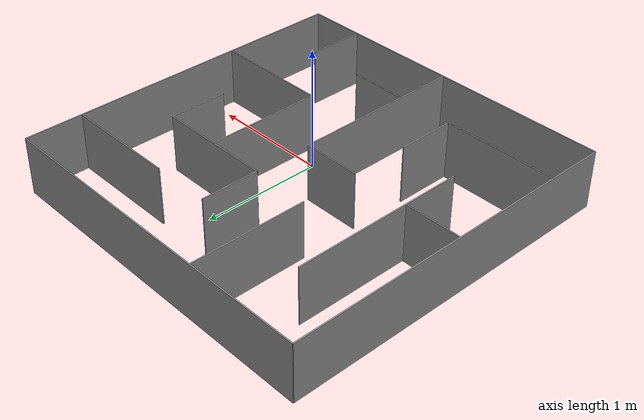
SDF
<?xml version='1.0'?>
<sdf version='1.7'>
  <model name='Maze'>
    <link name='link_0_clone_0_clone_0'>
      <inertial>
        <mass>1</mass>
        <inertia>
          <ixx>0.166667</ixx>
          <ixy>0</ixy>
          <ixz>0</ixz>
          <iyy>0.166667</iyy>
          <iyz>0</iyz>
          <izz>0.166667</izz>
        </inertia>
        <pose>0 0 0 0 -0 0</pose>
      </inertial>
      <pose>-0.039474 -1.42105 0 0 -0 0</pose>
      <gravity>1</gravity>
      <self_collide>0</self_collide>
      <kinematic>0</kinematic>
      <enable_wind>0</enable_wind>
      <visual name='visual'>
        <pose>0 0 0 0 -0 0</pose>
        <geometry>
          <box>
            <size>3 0.01 0.5</size>
          </box>
        </geometry>
        <material>
          <lighting>1</lighting>
          <script>
            <uri>file://media/materials/scripts/gazebo.material</uri>
            <name>Gazebo/Grey</name>
          </script>
          <shader type='pixel'>
            <normal_map>__default__</normal_map>
          </shader>
          <ambient>0.3 0.3 0.3 1</ambient>
          <diffuse>0.7 0.7 0.7 1</diffuse>
          <specular>0.01 0.01 0.01 1</specular>
          <emissive>0 0 0 1</emissive>
        </material>
        <transparency>0</transparency>
        <cast_shadows>1</cast_shadows>
      </visual>
      <collision name='collision'>
        <laser_retro>0</laser_retro>
        <max_contacts>10</max_contacts>
        <pose>0 0 0 0 -0 0</pose>
        <geometry>
          <box>
            <size>3 0.01 0.5</size>
          </box>
        </geometry>
        <surface>
          <friction>
            <ode>
              <mu>1</mu>
              <mu2>1</mu2>
              <fdir1>0 0 0</fdir1>
              <slip1>0</slip1>
              <slip2>0</slip2>
            </ode>
            <torsional>
              <coefficient>1</coefficient>
              <patch_radius>0</patch_radius>
              <surface_radius>0</surface_radius>
              <use_patch_radius>1</use_patch_radius>
              <ode>
                <slip>0</slip>
              </ode>
            </torsional>
          </friction>
          <bounce>
            <restitution_coefficient>0</restitution_coefficient>
            <threshold>1e+06</threshold>
          </bounce>
          <contact>
            <collide_without_contact>0</collide_without_contact>
            <collide_without_contact_bitmask>1</collide_without_contact_bitmask>
            <collide_bitmask>1</collide_bitmask>
            <ode>
              <soft_cfm>0</soft_cfm>
              <soft_erp>0.2</soft_erp>
              <kp>1e+13</kp>
              <kd>1</kd>
              <max_vel>0.01</max_vel>
              <min_depth>0</min_depth>
            </ode>
            <bullet>
              <split_impulse>1</split_impulse>
              <split_impulse_penetration_threshold>-0.01</split_impulse_penetration_threshold>
              <soft_cfm>0</soft_cfm>
              <soft_erp>0.2</soft_erp>
              <kp>1e+13</kp>
              <kd>1</kd>
            </bullet>
          </contact>
        </surface>
      </collision>
    </link>
    <link name='link_0_clone_0_clone_0_clone_0'>
      <inertial>
        <mass>1</mass>
        <inertia>
          <ixx>0.166667</ixx>
          <ixy>0</ixy>
          <ixz>0</ixz>
          <iyy>0.166667</iyy>
          <iyz>0</iyz>
          <izz>0.166667</izz>
        </inertia>
        <pose>0 0 0 0 -0 0</pose>
      </inertial>
      <pose>-0.039474 1.57895 0 0 -0 0</pose>
      <gravity>1</gravity>
      <self_collide>0</self_collide>
      <kinematic>0</kinematic>
      <enable_wind>0</enable_wind>
      <visual name='visual'>
        <pose>0 0 0 0 -0 0</pose>
        <geometry>
          <box>
            <size>3 0.01 0.5</size>
          </box>
        </geometry>
        <material>
          <lighting>1</lighting>
          <script>
            <uri>file://media/materials/scripts/gazebo.material</uri>
            <name>Gazebo/Grey</name>
          </script>
          <shader type='pixel'>
            <normal_map>__default__</normal_map>
          </shader>
          <ambient>0.3 0.3 0.3 1</ambient>
          <diffuse>0.7 0.7 0.7 1</diffuse>
          <specular>0.01 0.01 0.01 1</specular>
          <emissive>0 0 0 1</emissive>
        </material>
        <transparency>0</transparency>
        <cast_shadows>1</cast_shadows>
      </visual>
      <collision name='collision'>
        <laser_retro>0</laser_retro>
        <max_contacts>10</max_contacts>
        <pose>0 0 0 0 -0 0</pose>
        <geometry>
          <box>
            <size>3 0.01 0.5</size>
          </box>
        </geometry>
        <surface>
          <friction>
            <ode>
              <mu>1</mu>
              <mu2>1</mu2>
              <fdir1>0 0 0</fdir1>
              <slip1>0</slip1>
              <slip2>0</slip2>
            </ode>
            <torsional>
              <coefficient>1</coefficient>
              <patch_radius>0</patch_radius>
              <surface_radius>0</surface_radius>
              <use_patch_radius>1</use_patch_radius>
              <ode>
                <slip>0</slip>
              </ode>
            </torsional>
          </friction>
          <bounce>
            <restitution_coefficient>0</restitution_coefficient>
            <threshold>1e+06</threshold>
          </bounce>
          <contact>
            <collide_without_contact>0</collide_without_contact>
            <collide_without_contact_bitmask>1</collide_without_contact_bitmask>
            <collide_bitmask>1</collide_bitmask>
            <ode>
              <soft_cfm>0</soft_cfm>
              <soft_erp>0.2</soft_erp>
              <kp>1e+13</kp>
              <kd>1</kd>
              <max_vel>0.01</max_vel>
              <min_depth>0</min_depth>
            </ode>
            <bullet>
              <split_impulse>1</split_impulse>
              <split_impulse_penetration_threshold>-0.01</split_impulse_penetration_threshold>
              <soft_cfm>0</soft_cfm>
              <soft_erp>0.2</soft_erp>
              <kp>1e+13</kp>
              <kd>1</kd>
            </bullet>
          </contact>
        </surface>
      </collision>
    </link>
    <link name='link_0_clone_0_clone_0_clone_1'>
      <inertial>
        <mass>1</mass>
        <inertia>
          <ixx>0.166667</ixx>
          <ixy>0</ixy>
          <ixz>0</ixz>
          <iyy>0.166667</iyy>
          <iyz>0</iyz>
          <izz>0.166667</izz>
        </inertia>
        <pose>0 0 0 0 -0 0</pose>
      </inertial>
      <pose>1.46053 0.078947 0 0 -0 0</pose>
      <gravity>1</gravity>
      <self_collide>0</self_collide>
      <kinematic>0</kinematic>
      <enable_wind>0</enable_wind>
      <visual name='visual'>
        <pose>0 0 0 0 -0 0</pose>
        <geometry>
          <box>
            <size>0.01 3 0.5</size>
          </box>
        </geometry>
        <material>
          <lighting>1</lighting>
          <script>
            <uri>file://media/materials/scripts/gazebo.material</uri>
            <name>Gazebo/Grey</name>
          </script>
          <shader type='pixel'>
            <normal_map>__default__</normal_map>
          </shader>
          <ambient>0.3 0.3 0.3 1</ambient>
          <diffuse>0.7 0.7 0.7 1</diffuse>
          <specular>0.01 0.01 0.01 1</specular>
          <emissive>0 0 0 1</emissive>
        </material>
        <transparency>0</transparency>
        <cast_shadows>1</cast_shadows>
      </visual>
      <collision name='collision'>
        <laser_retro>0</laser_retro>
        <max_contacts>10</max_contacts>
        <pose>0 0 0 0 -0 0</pose>
        <geometry>
          <box>
            <size>0.01 3 0.5</size>
          </box>
        </geometry>
        <surface>
          <friction>
            <ode>
              <mu>1</mu>
              <mu2>1</mu2>
              <fdir1>0 0 0</fdir1>
              <slip1>0</slip1>
              <slip2>0</slip2>
            </ode>
            <torsional>
              <coefficient>1</coefficient>
              <patch_radius>0</patch_radius>
              <surface_radius>0</surface_radius>
              <use_patch_radius>1</use_patch_radius>
              <ode>
                <slip>0</slip>
              </ode>
            </torsional>
          </friction>
          <bounce>
            <restitution_coefficient>0</restitution_coefficient>
            <threshold>1e+06</threshold>
          </bounce>
          <contact>
            <collide_without_contact>0</collide_without_contact>
            <collide_without_contact_bitmask>1</collide_without_contact_bitmask>
            <collide_bitmask>1</collide_bitmask>
            <ode>
              <soft_cfm>0</soft_cfm>
              <soft_erp>0.2</soft_erp>
              <kp>1e+13</kp>
              <kd>1</kd>
              <max_vel>0.01</max_vel>
              <min_depth>0</min_depth>
            </ode>
            <bullet>
              <split_impulse>1</split_impulse>
              <split_impulse_penetration_threshold>-0.01</split_impulse_penetration_threshold>
              <soft_cfm>0</soft_cfm>
              <soft_erp>0.2</soft_erp>
              <kp>1e+13</kp>
              <kd>1</kd>
            </bullet>
          </contact>
        </surface>
      </collision>
    </link>
    <link name='link_0_clone_0_clone_0_clone_1_clone'>
      <inertial>
        <mass>1</mass>
        <inertia>
          <ixx>0.166667</ixx>
          <ixy>0</ixy>
          <ixz>0</ixz>
          <iyy>0.166667</iyy>
          <iyz>0</iyz>
          <izz>0.166667</izz>
        </inertia>
        <pose>0 0 0 0 -0 0</pose>
      </inertial>
      <pose>-1.53947 0.078947 0 0 -0 0</pose>
      <gravity>1</gravity>
      <self_collide>0</self_collide>
      <kinematic>0</kinematic>
      <enable_wind>0</enable_wind>
      <visual name='visual'>
        <pose>0 0 0 0 -0 0</pose>
        <geometry>
          <box>
            <size>0.01 3 0.5</size>
          </box>
        </geometry>
        <material>
          <lighting>1</lighting>
          <script>
            <uri>file://media/materials/scripts/gazebo.material</uri>
            <name>Gazebo/Grey</name>
          </script>
          <shader type='pixel'>
            <normal_map>__default__</normal_map>
          </shader>
          <ambient>0.3 0.3 0.3 1</ambient>
          <diffuse>0.7 0.7 0.7 1</diffuse>
          <specular>0.01 0.01 0.01 1</specular>
          <emissive>0 0 0 1</emissive>
        </material>
        <transparency>0</transparency>
        <cast_shadows>1</cast_shadows>
      </visual>
      <collision name='collision'>
        <laser_retro>0</laser_retro>
        <max_contacts>10</max_contacts>
        <pose>0 0 0 0 -0 0</pose>
        <geometry>
          <box>
            <size>0.01 3 0.5</size>
          </box>
        </geometry>
        <surface>
          <friction>
            <ode>
              <mu>1</mu>
              <mu2>1</mu2>
              <fdir1>0 0 0</fdir1>
              <slip1>0</slip1>
              <slip2>0</slip2>
            </ode>
            <torsional>
              <coefficient>1</coefficient>
              <patch_radius>0</patch_radius>
              <surface_radius>0</surface_radius>
              <use_patch_radius>1</use_patch_radius>
              <ode>
                <slip>0</slip>
              </ode>
            </torsional>
          </friction>
          <bounce>
            <restitution_coefficient>0</restitution_coefficient>
            <threshold>1e+06</threshold>
          </bounce>
          <contact>
            <collide_without_contact>0</collide_without_contact>
            <collide_without_contact_bitmask>1</collide_without_contact_bitmask>
            <collide_bitmask>1</collide_bitmask>
            <ode>
              <soft_cfm>0</soft_cfm>
              <soft_erp>0.2</soft_erp>
              <kp>1e+13</kp>
              <kd>1</kd>
              <max_vel>0.01</max_vel>
              <min_depth>0</min_depth>
            </ode>
            <bullet>
              <split_impulse>1</split_impulse>
              <split_impulse_penetration_threshold>-0.01</split_impulse_penetration_threshold>
              <soft_cfm>0</soft_cfm>
              <soft_erp>0.2</soft_erp>
              <kp>1e+13</kp>
              <kd>1</kd>
            </bullet>
          </contact>
        </surface>
      </collision>
    </link>
    <link name='link_0_clone_0_clone_0_clone_clone_0'>
      <inertial>
        <mass>1</mass>
        <inertia>
          <ixx>0.166667</ixx>
          <ixy>0</ixy>
          <ixz>0</ixz>
          <iyy>0.166667</iyy>
          <iyz>0</iyz>
          <izz>0.166667</izz>
        </inertia>
        <pose>0 0 0 0 -0 0</pose>
      </inertial>
      <pose>0.960526 1.07895 0 0 -0 0</pose>
      <gravity>1</gravity>
      <self_collide>0</self_collide>
      <kinematic>0</kinematic>
      <enable_wind>0</enable_wind>
      <visual name='visual'>
        <pose>0 0 0 0 -0 0</pose>
        <geometry>
          <box>
            <size>1 0.01 0.5</size>
          </box>
        </geometry>
        <material>
          <lighting>1</lighting>
          <script>
            <uri>file://media/materials/scripts/gazebo.material</uri>
            <name>Gazebo/Grey</name>
          </script>
          <shader type='pixel'>
            <normal_map>__default__</normal_map>
          </shader>
          <ambient>0.3 0.3 0.3 1</ambient>
          <diffuse>0.7 0.7 0.7 1</diffuse>
          <specular>0.01 0.01 0.01 1</specular>
          <emissive>0 0 0 1</emissive>
        </material>
        <transparency>0</transparency>
        <cast_shadows>1</cast_shadows>
      </visual>
      <collision name='collision'>
        <laser_retro>0</laser_retro>
        <max_contacts>10</max_contacts>
        <pose>0 0 0 0 -0 0</pose>
        <geometry>
          <box>
            <size>1 0.01 0.5</size>
          </box>
        </geometry>
        <surface>
          <friction>
            <ode>
              <mu>1</mu>
              <mu2>1</mu2>
              <fdir1>0 0 0</fdir1>
              <slip1>0</slip1>
              <slip2>0</slip2>
            </ode>
            <torsional>
              <coefficient>1</coefficient>
              <patch_radius>0</patch_radius>
              <surface_radius>0</surface_radius>
              <use_patch_radius>1</use_patch_radius>
              <ode>
                <slip>0</slip>
              </ode>
            </torsional>
          </friction>
          <bounce>
            <restitution_coefficient>0</restitution_coefficient>
            <threshold>1e+06</threshold>
          </bounce>
          <contact>
            <collide_without_contact>0</collide_without_contact>
            <collide_without_contact_bitmask>1</collide_without_contact_bitmask>
            <collide_bitmask>1</collide_bitmask>
            <ode>
              <soft_cfm>0</soft_cfm>
              <soft_erp>0.2</soft_erp>
              <kp>1e+13</kp>
              <kd>1</kd>
              <max_vel>0.01</max_vel>
              <min_depth>0</min_depth>
            </ode>
            <bullet>
              <split_impulse>1</split_impulse>
              <split_impulse_penetration_threshold>-0.01</split_impulse_penetration_threshold>
              <soft_cfm>0</soft_cfm>
              <soft_erp>0.2</soft_erp>
              <kp>1e+13</kp>
              <kd>1</kd>
            </bullet>
          </contact>
        </surface>
      </collision>
    </link>
    <link name='link_0_clone_0_clone_0_clone_clone_0_clone'>
      <inertial>
        <mass>1</mass>
        <inertia>
          <ixx>0.166667</ixx>
          <ixy>0</ixy>
          <ixz>0</ixz>
          <iyy>0.166667</iyy>
          <iyz>0</iyz>
          <izz>0.166667</izz>
        </inertia>
        <pose>0 0 0 0 -0 0</pose>
      </inertial>
      <pose>0.460526 0.578947 0 0 -0 0</pose>
      <gravity>1</gravity>
      <self_collide>0</self_collide>
      <kinematic>0</kinematic>
      <enable_wind>0</enable_wind>
      <visual name='visual'>
        <pose>0 0 0 0 -0 0</pose>
        <geometry>
          <box>
            <size>1 0.01 0.5</size>
          </box>
        </geometry>
        <material>
          <lighting>1</lighting>
          <script>
            <uri>file://media/materials/scripts/gazebo.material</uri>
            <name>Gazebo/Grey</name>
          </script>
          <shader type='pixel'>
            <normal_map>__default__</normal_map>
          </shader>
          <ambient>0.3 0.3 0.3 1</ambient>
          <diffuse>0.7 0.7 0.7 1</diffuse>
          <specular>0.01 0.01 0.01 1</specular>
          <emissive>0 0 0 1</emissive>
        </material>
        <transparency>0</transparency>
        <cast_shadows>1</cast_shadows>
      </visual>
      <collision name='collision'>
        <laser_retro>0</laser_retro>
        <max_contacts>10</max_contacts>
        <pose>0 0 0 0 -0 0</pose>
        <geometry>
          <box>
            <size>1 0.01 0.5</size>
          </box>
        </geometry>
        <surface>
          <friction>
            <ode>
              <mu>1</mu>
              <mu2>1</mu2>
              <fdir1>0 0 0</fdir1>
              <slip1>0</slip1>
              <slip2>0</slip2>
            </ode>
            <torsional>
              <coefficient>1</coefficient>
              <patch_radius>0</patch_radius>
              <surface_radius>0</surface_radius>
              <use_patch_radius>1</use_patch_radius>
              <ode>
                <slip>0</slip>
              </ode>
            </torsional>
          </friction>
          <bounce>
            <restitution_coefficient>0</restitution_coefficient>
            <threshold>1e+06</threshold>
          </bounce>
          <contact>
            <collide_without_contact>0</collide_without_contact>
            <collide_without_contact_bitmask>1</collide_without_contact_bitmask>
            <collide_bitmask>1</collide_bitmask>
            <ode>
              <soft_cfm>0</soft_cfm>
              <soft_erp>0.2</soft_erp>
              <kp>1e+13</kp>
              <kd>1</kd>
              <max_vel>0.01</max_vel>
              <min_depth>0</min_depth>
            </ode>
            <bullet>
              <split_impulse>1</split_impulse>
              <split_impulse_penetration_threshold>-0.01</split_impulse_penetration_threshold>
              <soft_cfm>0</soft_cfm>
              <soft_erp>0.2</soft_erp>
              <kp>1e+13</kp>
              <kd>1</kd>
            </bullet>
          </contact>
        </surface>
      </collision>
    </link>
    <link name='link_0_clone_0_clone_0_clone_clone_1'>
      <inertial>
        <mass>1</mass>
        <inertia>
          <ixx>0.166667</ixx>
          <ixy>0</ixy>
          <ixz>0</ixz>
          <iyy>0.166667</iyy>
          <iyz>0</iyz>
          <izz>0.166667</izz>
        </inertia>
        <pose>0 0 0 0 -0 0</pose>
      </inertial>
      <pose>0.960526 -0.421053 0 0 -0 0</pose>
      <gravity>1</gravity>
      <self_collide>0</self_collide>
      <kinematic>0</kinematic>
      <enable_wind>0</enable_wind>
      <visual name='visual'>
        <pose>0 0 0 0 -0 0</pose>
        <geometry>
          <box>
            <size>1 0.01 0.5</size>
          </box>
        </geometry>
        <material>
          <lighting>1</lighting>
          <script>
            <uri>file://media/materials/scripts/gazebo.material</uri>
            <name>Gazebo/Grey</name>
          </script>
          <shader type='pixel'>
            <normal_map>__default__</normal_map>
          </shader>
          <ambient>0.3 0.3 0.3 1</ambient>
          <diffuse>0.7 0.7 0.7 1</diffuse>
          <specular>0.01 0.01 0.01 1</specular>
          <emissive>0 0 0 1</emissive>
        </material>
        <transparency>0</transparency>
        <cast_shadows>1</cast_shadows>
      </visual>
      <collision name='collision'>
        <laser_retro>0</laser_retro>
        <max_contacts>10</max_contacts>
        <pose>0 0 0 0 -0 0</pose>
        <geometry>
          <box>
            <size>1 0.01 0.5</size>
          </box>
        </geometry>
        <surface>
          <friction>
            <ode>
              <mu>1</mu>
              <mu2>1</mu2>
              <fdir1>0 0 0</fdir1>
              <slip1>0</slip1>
              <slip2>0</slip2>
            </ode>
            <torsional>
              <coefficient>1</coefficient>
              <patch_radius>0</patch_radius>
              <surface_radius>0</surface_radius>
              <use_patch_radius>1</use_patch_radius>
              <ode>
                <slip>0</slip>
              </ode>
            </torsional>
          </friction>
          <bounce>
            <restitution_coefficient>0</restitution_coefficient>
            <threshold>1e+06</threshold>
          </bounce>
          <contact>
            <collide_without_contact>0</collide_without_contact>
            <collide_without_contact_bitmask>1</collide_without_contact_bitmask>
            <collide_bitmask>1</collide_bitmask>
            <ode>
              <soft_cfm>0</soft_cfm>
              <soft_erp>0.2</soft_erp>
              <kp>1e+13</kp>
              <kd>1</kd>
              <max_vel>0.01</max_vel>
              <min_depth>0</min_depth>
            </ode>
            <bullet>
              <split_impulse>1</split_impulse>
              <split_impulse_penetration_threshold>-0.01</split_impulse_penetration_threshold>
              <soft_cfm>0</soft_cfm>
              <soft_erp>0.2</soft_erp>
              <kp>1e+13</kp>
              <kd>1</kd>
            </bullet>
          </contact>
        </surface>
      </collision>
    </link>
    <link name='link_0_clone_0_clone_0_clone_clone_2'>
      <inertial>
        <mass>1</mass>
        <inertia>
          <ixx>0.166667</ixx>
          <ixy>0</ixy>
          <ixz>0</ixz>
          <iyy>0.166667</iyy>
          <iyz>0</iyz>
          <izz>0.166667</izz>
        </inertia>
        <pose>0 0 0 0 -0 0</pose>
      </inertial>
      <pose>-1.03947 -0.921053 0 0 -0 0</pose>
      <gravity>1</gravity>
      <self_collide>0</self_collide>
      <kinematic>0</kinematic>
      <enable_wind>0</enable_wind>
      <visual name='visual'>
        <pose>0 0 0 0 -0 0</pose>
        <geometry>
          <box>
            <size>1 0.01 0.5</size>
          </box>
        </geometry>
        <material>
          <lighting>1</lighting>
          <script>
            <uri>file://media/materials/scripts/gazebo.material</uri>
            <name>Gazebo/Grey</name>
          </script>
          <shader type='pixel'>
            <normal_map>__default__</normal_map>
          </shader>
          <ambient>0.3 0.3 0.3 1</ambient>
          <diffuse>0.7 0.7 0.7 1</diffuse>
          <specular>0.01 0.01 0.01 1</specular>
          <emissive>0 0 0 1</emissive>
        </material>
        <transparency>0</transparency>
        <cast_shadows>1</cast_shadows>
      </visual>
      <collision name='collision'>
        <laser_retro>0</laser_retro>
        <max_contacts>10</max_contacts>
        <pose>0 0 0 0 -0 0</pose>
        <geometry>
          <box>
            <size>1 0.01 0.5</size>
          </box>
        </geometry>
        <surface>
          <friction>
            <ode>
              <mu>1</mu>
              <mu2>1</mu2>
              <fdir1>0 0 0</fdir1>
              <slip1>0</slip1>
              <slip2>0</slip2>
            </ode>
            <torsional>
              <coefficient>1</coefficient>
              <patch_radius>0</patch_radius>
              <surface_radius>0</surface_radius>
              <use_patch_radius>1</use_patch_radius>
              <ode>
                <slip>0</slip>
              </ode>
            </torsional>
          </friction>
          <bounce>
            <restitution_coefficient>0</restitution_coefficient>
            <threshold>1e+06</threshold>
          </bounce>
          <contact>
            <collide_without_contact>0</collide_without_contact>
            <collide_without_contact_bitmask>1</collide_without_contact_bitmask>
            <collide_bitmask>1</collide_bitmask>
            <ode>
              <soft_cfm>0</soft_cfm>
              <soft_erp>0.2</soft_erp>
              <kp>1e+13</kp>
              <kd>1</kd>
              <max_vel>0.01</max_vel>
              <min_depth>0</min_depth>
            </ode>
            <bullet>
              <split_impulse>1</split_impulse>
              <split_impulse_penetration_threshold>-0.01</split_impulse_penetration_threshold>
              <soft_cfm>0</soft_cfm>
              <soft_erp>0.2</soft_erp>
              <kp>1e+13</kp>
              <kd>1</kd>
            </bullet>
          </contact>
        </surface>
      </collision>
    </link>
    <link name='link_0_clone_0_clone_0_clone_clone_3_clone'>
      <inertial>
        <mass>1</mass>
        <inertia>
          <ixx>0.166667</ixx>
          <ixy>0</ixy>
          <ixz>0</ixz>
          <iyy>0.166667</iyy>
          <iyz>0</iyz>
          <izz>0.166667</izz>
        </inertia>
        <pose>0 0 0 0 -0 0</pose>
      </inertial>
      <pose>0.210526 -0.921053 0 0 -0 0</pose>
      <gravity>1</gravity>
      <self_collide>0</self_collide>
      <kinematic>0</kinematic>
      <enable_wind>0</enable_wind>
      <visual name='visual'>
        <pose>0 0 0 0 -0 0</pose>
        <geometry>
          <box>
            <size>0.5 0.01 0.5</size>
          </box>
        </geometry>
        <material>
          <lighting>1</lighting>
          <script>
            <uri>file://media/materials/scripts/gazebo.material</uri>
            <name>Gazebo/Grey</name>
          </script>
          <shader type='pixel'>
            <normal_map>__default__</normal_map>
          </shader>
          <ambient>0.3 0.3 0.3 1</ambient>
          <diffuse>0.7 0.7 0.7 1</diffuse>
          <specular>0.01 0.01 0.01 1</specular>
          <emissive>0 0 0 1</emissive>
        </material>
        <transparency>0</transparency>
        <cast_shadows>1</cast_shadows>
      </visual>
      <collision name='collision'>
        <laser_retro>0</laser_retro>
        <max_contacts>10</max_contacts>
        <pose>0 0 0 0 -0 0</pose>
        <geometry>
          <box>
            <size>0.5 0.01 0.5</size>
          </box>
        </geometry>
        <surface>
          <friction>
            <ode>
              <mu>1</mu>
              <mu2>1</mu2>
              <fdir1>0 0 0</fdir1>
              <slip1>0</slip1>
              <slip2>0</slip2>
            </ode>
            <torsional>
              <coefficient>1</coefficient>
              <patch_radius>0</patch_radius>
              <surface_radius>0</surface_radius>
              <use_patch_radius>1</use_patch_radius>
              <ode>
                <slip>0</slip>
              </ode>
            </torsional>
          </friction>
          <bounce>
            <restitution_coefficient>0</restitution_coefficient>
            <threshold>1e+06</threshold>
          </bounce>
          <contact>
            <collide_without_contact>0</collide_without_contact>
            <collide_without_contact_bitmask>1</collide_without_contact_bitmask>
            <collide_bitmask>1</collide_bitmask>
            <ode>
              <soft_cfm>0</soft_cfm>
              <soft_erp>0.2</soft_erp>
              <kp>1e+13</kp>
              <kd>1</kd>
              <max_vel>0.01</max_vel>
              <min_depth>0</min_depth>
            </ode>
            <bullet>
              <split_impulse>1</split_impulse>
              <split_impulse_penetration_threshold>-0.01</split_impulse_penetration_threshold>
              <soft_cfm>0</soft_cfm>
              <soft_erp>0.2</soft_erp>
              <kp>1e+13</kp>
              <kd>1</kd>
            </bullet>
          </contact>
        </surface>
      </collision>
    </link>
    <link name='link_0_clone_0_clone_0_clone_clone_3_clone_0'>
      <inertial>
        <mass>1</mass>
        <inertia>
          <ixx>0.166667</ixx>
          <ixy>0</ixy>
          <ixz>0</ixz>
          <iyy>0.166667</iyy>
          <iyz>0</iyz>
          <izz>0.166667</izz>
        </inertia>
        <pose>0 0 0 0 -0 0</pose>
      </inertial>
      <pose>-1.28947 0.078947 0 0 -0 0</pose>
      <gravity>1</gravity>
      <self_collide>0</self_collide>
      <kinematic>0</kinematic>
      <enable_wind>0</enable_wind>
      <visual name='visual'>
        <pose>0 0 0 0 -0 0</pose>
        <geometry>
          <box>
            <size>0.5 0.01 0.5</size>
          </box>
        </geometry>
        <material>
          <lighting>1</lighting>
          <script>
            <uri>file://media/materials/scripts/gazebo.material</uri>
            <name>Gazebo/Grey</name>
          </script>
          <shader type='pixel'>
            <normal_map>__default__</normal_map>
          </shader>
          <ambient>0.3 0.3 0.3 1</ambient>
          <diffuse>0.7 0.7 0.7 1</diffuse>
          <specular>0.01 0.01 0.01 1</specular>
          <emissive>0 0 0 1</emissive>
        </material>
        <transparency>0</transparency>
        <cast_shadows>1</cast_shadows>
      </visual>
      <collision name='collision'>
        <laser_retro>0</laser_retro>
        <max_contacts>10</max_contacts>
        <pose>0 0 0 0 -0 0</pose>
        <geometry>
          <box>
            <size>0.5 0.01 0.5</size>
          </box>
        </geometry>
        <surface>
          <friction>
            <ode>
              <mu>1</mu>
              <mu2>1</mu2>
              <fdir1>0 0 0</fdir1>
              <slip1>0</slip1>
              <slip2>0</slip2>
            </ode>
            <torsional>
              <coefficient>1</coefficient>
              <patch_radius>0</patch_radius>
              <surface_radius>0</surface_radius>
              <use_patch_radius>1</use_patch_radius>
              <ode>
                <slip>0</slip>
              </ode>
            </torsional>
          </friction>
          <bounce>
            <restitution_coefficient>0</restitution_coefficient>
            <threshold>1e+06</threshold>
          </bounce>
          <contact>
            <collide_without_contact>0</collide_without_contact>
            <collide_without_contact_bitmask>1</collide_without_contact_bitmask>
            <collide_bitmask>1</collide_bitmask>
            <ode>
              <soft_cfm>0</soft_cfm>
              <soft_erp>0.2</soft_erp>
              <kp>1e+13</kp>
              <kd>1</kd>
              <max_vel>0.01</max_vel>
              <min_depth>0</min_depth>
            </ode>
            <bullet>
              <split_impulse>1</split_impulse>
              <split_impulse_penetration_threshold>-0.01</split_impulse_penetration_threshold>
              <soft_cfm>0</soft_cfm>
              <soft_erp>0.2</soft_erp>
              <kp>1e+13</kp>
              <kd>1</kd>
            </bullet>
          </contact>
        </surface>
      </collision>
    </link>
    <link name='link_0_clone_0_clone_0_clone_clone_3_clone_1'>
      <inertial>
        <mass>1</mass>
        <inertia>
          <ixx>0.166667</ixx>
          <ixy>0</ixy>
          <ixz>0</ixz>
          <iyy>0.166667</iyy>
          <iyz>0</iyz>
          <izz>0.166667</izz>
        </inertia>
        <pose>0 0 0 0 -0 0</pose>
      </inertial>
      <pose>-0.289474 0.078947 0 0 -0 0</pose>
      <gravity>1</gravity>
      <self_collide>0</self_collide>
      <kinematic>0</kinematic>
      <enable_wind>0</enable_wind>
      <visual name='visual'>
        <pose>0 0 0 0 -0 0</pose>
        <geometry>
          <box>
            <size>0.5 0.01 0.5</size>
          </box>
        </geometry>
        <material>
          <lighting>1</lighting>
          <script>
            <uri>file://media/materials/scripts/gazebo.material</uri>
            <name>Gazebo/Grey</name>
          </script>
          <shader type='pixel'>
            <normal_map>__default__</normal_map>
          </shader>
          <ambient>0.3 0.3 0.3 1</ambient>
          <diffuse>0.7 0.7 0.7 1</diffuse>
          <specular>0.01 0.01 0.01 1</specular>
          <emissive>0 0 0 1</emissive>
        </material>
        <transparency>0</transparency>
        <cast_shadows>1</cast_shadows>
      </visual>
      <collision name='collision'>
        <laser_retro>0</laser_retro>
        <max_contacts>10</max_contacts>
        <pose>0 0 0 0 -0 0</pose>
        <geometry>
          <box>
            <size>0.5 0.01 0.5</size>
          </box>
        </geometry>
        <surface>
          <friction>
            <ode>
              <mu>1</mu>
              <mu2>1</mu2>
              <fdir1>0 0 0</fdir1>
              <slip1>0</slip1>
              <slip2>0</slip2>
            </ode>
            <torsional>
              <coefficient>1</coefficient>
              <patch_radius>0</patch_radius>
              <surface_radius>0</surface_radius>
              <use_patch_radius>1</use_patch_radius>
              <ode>
                <slip>0</slip>
              </ode>
            </torsional>
          </friction>
          <bounce>
            <restitution_coefficient>0</restitution_coefficient>
            <threshold>1e+06</threshold>
          </bounce>
          <contact>
            <collide_without_contact>0</collide_without_contact>
            <collide_without_contact_bitmask>1</collide_without_contact_bitmask>
            <collide_bitmask>1</collide_bitmask>
            <ode>
              <soft_cfm>0</soft_cfm>
              <soft_erp>0.2</soft_erp>
              <kp>1e+13</kp>
              <kd>1</kd>
              <max_vel>0.01</max_vel>
              <min_depth>0</min_depth>
            </ode>
            <bullet>
              <split_impulse>1</split_impulse>
              <split_impulse_penetration_threshold>-0.01</split_impulse_penetration_threshold>
              <soft_cfm>0</soft_cfm>
              <soft_erp>0.2</soft_erp>
              <kp>1e+13</kp>
              <kd>1</kd>
            </bullet>
          </contact>
        </surface>
      </collision>
    </link>
    <link name='link_0_clone_0_clone_0_clone_clone_clone'>
      <inertial>
        <mass>1</mass>
        <inertia>
          <ixx>0.166667</ixx>
          <ixy>0</ixy>
          <ixz>0</ixz>
          <iyy>0.166667</iyy>
          <iyz>0</iyz>
          <izz>0.166667</izz>
        </inertia>
        <pose>0 0 0 0 -0 0</pose>
      </inertial>
      <pose>0.460526 0.078947 0 0 -0 0</pose>
      <gravity>1</gravity>
      <self_collide>0</self_collide>
      <kinematic>0</kinematic>
      <enable_wind>0</enable_wind>
      <visual name='visual'>
        <pose>0 0 0 0 -0 0</pose>
        <geometry>
          <box>
            <size>0.01 1 0.5</size>
          </box>
        </geometry>
        <material>
          <lighting>1</lighting>
          <script>
            <uri>file://media/materials/scripts/gazebo.material</uri>
            <name>Gazebo/Grey</name>
          </script>
          <shader type='pixel'>
            <normal_map>__default__</normal_map>
          </shader>
          <ambient>0.3 0.3 0.3 1</ambient>
          <diffuse>0.7 0.7 0.7 1</diffuse>
          <specular>0.01 0.01 0.01 1</specular>
          <emissive>0 0 0 1</emissive>
        </material>
        <transparency>0</transparency>
        <cast_shadows>1</cast_shadows>
      </visual>
      <collision name='collision'>
        <laser_retro>0</laser_retro>
        <max_contacts>10</max_contacts>
        <pose>0 0 0 0 -0 0</pose>
        <geometry>
          <box>
            <size>0.01 1 0.5</size>
          </box>
        </geometry>
        <surface>
          <friction>
            <ode>
              <mu>1</mu>
              <mu2>1</mu2>
              <fdir1>0 0 0</fdir1>
              <slip1>0</slip1>
              <slip2>0</slip2>
            </ode>
            <torsional>
              <coefficient>1</coefficient>
              <patch_radius>0</patch_radius>
              <surface_radius>0</surface_radius>
              <use_patch_radius>1</use_patch_radius>
              <ode>
                <slip>0</slip>
              </ode>
            </torsional>
          </friction>
          <bounce>
            <restitution_coefficient>0</restitution_coefficient>
            <threshold>1e+06</threshold>
          </bounce>
          <contact>
            <collide_without_contact>0</collide_without_contact>
            <collide_without_contact_bitmask>1</collide_without_contact_bitmask>
            <collide_bitmask>1</collide_bitmask>
            <ode>
              <soft_cfm>0</soft_cfm>
              <soft_erp>0.2</soft_erp>
              <kp>1e+13</kp>
              <kd>1</kd>
              <max_vel>0.01</max_vel>
              <min_depth>0</min_depth>
            </ode>
            <bullet>
              <split_impulse>1</split_impulse>
              <split_impulse_penetration_threshold>-0.01</split_impulse_penetration_threshold>
              <soft_cfm>0</soft_cfm>
              <soft_erp>0.2</soft_erp>
              <kp>1e+13</kp>
              <kd>1</kd>
            </bullet>
          </contact>
        </surface>
      </collision>
    </link>
    <link name='link_0_clone_0_clone_0_clone_clone_clone_0'>
      <inertial>
        <mass>1</mass>
        <inertia>
          <ixx>0.166667</ixx>
          <ixy>0</ixy>
          <ixz>0</ixz>
          <iyy>0.166667</iyy>
          <iyz>0</iyz>
          <izz>0.166667</izz>
        </inertia>
        <pose>0 0 0 0 -0 0</pose>
      </inertial>
      <pose>-0.539474 1.07895 0 0 -0 0</pose>
      <gravity>1</gravity>
      <self_collide>0</self_collide>
      <kinematic>0</kinematic>
      <enable_wind>0</enable_wind>
      <visual name='visual'>
        <pose>0 0 0 0 -0 0</pose>
        <geometry>
          <box>
            <size>0.01 1 0.5</size>
          </box>
        </geometry>
        <material>
          <lighting>1</lighting>
          <script>
            <uri>file://media/materials/scripts/gazebo.material</uri>
            <name>Gazebo/Grey</name>
          </script>
          <shader type='pixel'>
            <normal_map>__default__</normal_map>
          </shader>
          <ambient>0.3 0.3 0.3 1</ambient>
          <diffuse>0.7 0.7 0.7 1</diffuse>
          <specular>0.01 0.01 0.01 1</specular>
          <emissive>0 0 0 1</emissive>
        </material>
        <transparency>0</transparency>
        <cast_shadows>1</cast_shadows>
      </visual>
      <collision name='collision'>
        <laser_retro>0</laser_retro>
        <max_contacts>10</max_contacts>
        <pose>0 0 0 0 -0 0</pose>
        <geometry>
          <box>
            <size>0.01 1 0.5</size>
          </box>
        </geometry>
        <surface>
          <friction>
            <ode>
              <mu>1</mu>
              <mu2>1</mu2>
              <fdir1>0 0 0</fdir1>
              <slip1>0</slip1>
              <slip2>0</slip2>
            </ode>
            <torsional>
              <coefficient>1</coefficient>
              <patch_radius>0</patch_radius>
              <surface_radius>0</surface_radius>
              <use_patch_radius>1</use_patch_radius>
              <ode>
                <slip>0</slip>
              </ode>
            </torsional>
          </friction>
          <bounce>
            <restitution_coefficient>0</restitution_coefficient>
            <threshold>1e+06</threshold>
          </bounce>
          <contact>
            <collide_without_contact>0</collide_without_contact>
            <collide_without_contact_bitmask>1</collide_without_contact_bitmask>
            <collide_bitmask>1</collide_bitmask>
            <ode>
              <soft_cfm>0</soft_cfm>
              <soft_erp>0.2</soft_erp>
              <kp>1e+13</kp>
              <kd>1</kd>
              <max_vel>0.01</max_vel>
              <min_depth>0</min_depth>
            </ode>
            <bullet>
              <split_impulse>1</split_impulse>
              <split_impulse_penetration_threshold>-0.01</split_impulse_penetration_threshold>
              <soft_cfm>0</soft_cfm>
              <soft_erp>0.2</soft_erp>
              <kp>1e+13</kp>
              <kd>1</kd>
            </bullet>
          </contact>
        </surface>
      </collision>
    </link>
    <link name='link_0_clone_0_clone_0_clone_clone_clone_1_clone'>
      <inertial>
        <mass>1</mass>
        <inertia>
          <ixx>0.166667</ixx>
          <ixy>0</ixy>
          <ixz>0</ixz>
          <iyy>0.166667</iyy>
          <iyz>0</iyz>
          <izz>0.166667</izz>
        </inertia>
        <pose>0 0 0 0 -0 0</pose>
      </inertial>
      <pose>0.960526 0.328947 0 0 -0 0</pose>
      <gravity>1</gravity>
      <self_collide>0</self_collide>
      <kinematic>0</kinematic>
      <enable_wind>0</enable_wind>
      <visual name='visual'>
        <pose>0 0 0 0 -0 0</pose>
        <geometry>
          <box>
            <size>0.01 0.5 0.5</size>
          </box>
        </geometry>
        <material>
          <lighting>1</lighting>
          <script>
            <uri>file://media/materials/scripts/gazebo.material</uri>
            <name>Gazebo/Grey</name>
          </script>
          <shader type='pixel'>
            <normal_map>__default__</normal_map>
          </shader>
          <ambient>0.3 0.3 0.3 1</ambient>
          <diffuse>0.7 0.7 0.7 1</diffuse>
          <specular>0.01 0.01 0.01 1</specular>
          <emissive>0 0 0 1</emissive>
        </material>
        <transparency>0</transparency>
        <cast_shadows>1</cast_shadows>
      </visual>
      <collision name='collision'>
        <laser_retro>0</laser_retro>
        <max_contacts>10</max_contacts>
        <pose>0 0 0 0 -0 0</pose>
        <geometry>
          <box>
            <size>0.01 0.5 0.5</size>
          </box>
        </geometry>
        <surface>
          <friction>
            <ode>
              <mu>1</mu>
              <mu2>1</mu2>
              <fdir1>0 0 0</fdir1>
              <slip1>0</slip1>
              <slip2>0</slip2>
            </ode>
            <torsional>
              <coefficient>1</coefficient>
              <patch_radius>0</patch_radius>
              <surface_radius>0</surface_radius>
              <use_patch_radius>1</use_patch_radius>
              <ode>
                <slip>0</slip>
              </ode>
            </torsional>
          </friction>
          <bounce>
            <restitution_coefficient>0</restitution_coefficient>
            <threshold>1e+06</threshold>
          </bounce>
          <contact>
            <collide_without_contact>0</collide_without_contact>
            <collide_without_contact_bitmask>1</collide_without_contact_bitmask>
            <collide_bitmask>1</collide_bitmask>
            <ode>
              <soft_cfm>0</soft_cfm>
              <soft_erp>0.2</soft_erp>
              <kp>1e+13</kp>
              <kd>1</kd>
              <max_vel>0.01</max_vel>
              <min_depth>0</min_depth>
            </ode>
            <bullet>
              <split_impulse>1</split_impulse>
              <split_impulse_penetration_threshold>-0.01</split_impulse_penetration_threshold>
              <soft_cfm>0</soft_cfm>
              <soft_erp>0.2</soft_erp>
              <kp>1e+13</kp>
              <kd>1</kd>
            </bullet>
          </contact>
        </surface>
      </collision>
    </link>
    <link name='link_0_clone_0_clone_0_clone_clone_clone_1_clone_0'>
      <inertial>
        <mass>1</mass>
        <inertia>
          <ixx>0.166667</ixx>
          <ixy>0</ixy>
          <ixz>0</ixz>
          <iyy>0.166667</iyy>
          <iyz>0</iyz>
          <izz>0.166667</izz>
        </inertia>
        <pose>0 0 0 0 -0 0</pose>
      </inertial>
      <pose>-0.039474 0.828947 0 0 -0 0</pose>
      <gravity>1</gravity>
      <self_collide>0</self_collide>
      <kinematic>0</kinematic>
      <enable_wind>0</enable_wind>
      <visual name='visual'>
        <pose>0 0 0 0 -0 0</pose>
        <geometry>
          <box>
            <size>0.01 0.5 0.5</size>
          </box>
        </geometry>
        <material>
          <lighting>1</lighting>
          <script>
            <uri>file://media/materials/scripts/gazebo.material</uri>
            <name>Gazebo/Grey</name>
          </script>
          <shader type='pixel'>
            <normal_map>__default__</normal_map>
          </shader>
          <ambient>0.3 0.3 0.3 1</ambient>
          <diffuse>0.7 0.7 0.7 1</diffuse>
          <specular>0.01 0.01 0.01 1</specular>
          <emissive>0 0 0 1</emissive>
        </material>
        <transparency>0</transparency>
        <cast_shadows>1</cast_shadows>
      </visual>
      <collision name='collision'>
        <laser_retro>0</laser_retro>
        <max_contacts>10</max_contacts>
        <pose>0 0 0 0 -0 0</pose>
        <geometry>
          <box>
            <size>0.01 0.5 0.5</size>
          </box>
        </geometry>
        <surface>
          <friction>
            <ode>
              <mu>1</mu>
              <mu2>1</mu2>
              <fdir1>0 0 0</fdir1>
              <slip1>0</slip1>
              <slip2>0</slip2>
            </ode>
            <torsional>
              <coefficient>1</coefficient>
              <patch_radius>0</patch_radius>
              <surface_radius>0</surface_radius>
              <use_patch_radius>1</use_patch_radius>
              <ode>
                <slip>0</slip>
              </ode>
            </torsional>
          </friction>
          <bounce>
            <restitution_coefficient>0</restitution_coefficient>
            <threshold>1e+06</threshold>
          </bounce>
          <contact>
            <collide_without_contact>0</collide_without_contact>
            <collide_without_contact_bitmask>1</collide_without_contact_bitmask>
            <collide_bitmask>1</collide_bitmask>
            <ode>
              <soft_cfm>0</soft_cfm>
              <soft_erp>0.2</soft_erp>
              <kp>1e+13</kp>
              <kd>1</kd>
              <max_vel>0.01</max_vel>
              <min_depth>0</min_depth>
            </ode>
            <bullet>
              <split_impulse>1</split_impulse>
              <split_impulse_penetration_threshold>-0.01</split_impulse_penetration_threshold>
              <soft_cfm>0</soft_cfm>
              <soft_erp>0.2</soft_erp>
              <kp>1e+13</kp>
              <kd>1</kd>
            </bullet>
          </contact>
        </surface>
      </collision>
    </link>
    <link name='link_0_clone_0_clone_0_clone_clone_clone_1_clone_1'>
      <inertial>
        <mass>1</mass>
        <inertia>
          <ixx>0.166667</ixx>
          <ixy>0</ixy>
          <ixz>0</ixz>
          <iyy>0.166667</iyy>
          <iyz>0</iyz>
          <izz>0.166667</izz>
        </inertia>
        <pose>0 0 0 0 -0 0</pose>
      </inertial>
      <pose>0.960526 -1.17105 0 0 -0 0</pose>
      <gravity>1</gravity>
      <self_collide>0</self_collide>
      <kinematic>0</kinematic>
      <enable_wind>0</enable_wind>
      <visual name='visual'>
        <pose>0 0 0 0 -0 0</pose>
        <geometry>
          <box>
            <size>0.01 0.5 0.5</size>
          </box>
        </geometry>
        <material>
          <lighting>1</lighting>
          <script>
            <uri>file://media/materials/scripts/gazebo.material</uri>
            <name>Gazebo/Grey</name>
          </script>
          <shader type='pixel'>
            <normal_map>__default__</normal_map>
          </shader>
          <ambient>0.3 0.3 0.3 1</ambient>
          <diffuse>0.7 0.7 0.7 1</diffuse>
          <specular>0.01 0.01 0.01 1</specular>
          <emissive>0 0 0 1</emissive>
        </material>
        <transparency>0</transparency>
        <cast_shadows>1</cast_shadows>
      </visual>
      <collision name='collision'>
        <laser_retro>0</laser_retro>
        <max_contacts>10</max_contacts>
        <pose>0 0 0 0 -0 0</pose>
        <geometry>
          <box>
            <size>0.01 0.5 0.5</size>
          </box>
        </geometry>
        <surface>
          <friction>
            <ode>
              <mu>1</mu>
              <mu2>1</mu2>
              <fdir1>0 0 0</fdir1>
              <slip1>0</slip1>
              <slip2>0</slip2>
            </ode>
            <torsional>
              <coefficient>1</coefficient>
              <patch_radius>0</patch_radius>
              <surface_radius>0</surface_radius>
              <use_patch_radius>1</use_patch_radius>
              <ode>
                <slip>0</slip>
              </ode>
            </torsional>
          </friction>
          <bounce>
            <restitution_coefficient>0</restitution_coefficient>
            <threshold>1e+06</threshold>
          </bounce>
          <contact>
            <collide_without_contact>0</collide_without_contact>
            <collide_without_contact_bitmask>1</collide_without_contact_bitmask>
            <collide_bitmask>1</collide_bitmask>
            <ode>
              <soft_cfm>0</soft_cfm>
              <soft_erp>0.2</soft_erp>
              <kp>1e+13</kp>
              <kd>1</kd>
              <max_vel>0.01</max_vel>
              <min_depth>0</min_depth>
            </ode>
            <bullet>
              <split_impulse>1</split_impulse>
              <split_impulse_penetration_threshold>-0.01</split_impulse_penetration_threshold>
              <soft_cfm>0</soft_cfm>
              <soft_erp>0.2</soft_erp>
              <kp>1e+13</kp>
              <kd>1</kd>
            </bullet>
          </contact>
        </surface>
      </collision>
    </link>
    <link name='link_0_clone_0_clone_0_clone_clone_clone_1_clone_2'>
      <inertial>
        <mass>1</mass>
        <inertia>
          <ixx>0.166667</ixx>
          <ixy>0</ixy>
          <ixz>0</ixz>
          <iyy>0.166667</iyy>
          <iyz>0</iyz>
          <izz>0.166667</izz>
        </inertia>
        <pose>0 0 0 0 -0 0</pose>
      </inertial>
      <pose>-0.539474 -0.671053 0 0 -0 0</pose>
      <gravity>1</gravity>
      <self_collide>0</self_collide>
      <kinematic>0</kinematic>
      <enable_wind>0</enable_wind>
      <visual name='visual'>
        <pose>0 0 0 0 -0 0</pose>
        <geometry>
          <box>
            <size>0.01 0.5 0.5</size>
          </box>
        </geometry>
        <material>
          <lighting>1</lighting>
          <script>
            <uri>file://media/materials/scripts/gazebo.material</uri>
            <name>Gazebo/Grey</name>
          </script>
          <shader type='pixel'>
            <normal_map>__default__</normal_map>
          </shader>
          <ambient>0.3 0.3 0.3 1</ambient>
          <diffuse>0.7 0.7 0.7 1</diffuse>
          <specular>0.01 0.01 0.01 1</specular>
          <emissive>0 0 0 1</emissive>
        </material>
        <transparency>0</transparency>
        <cast_shadows>1</cast_shadows>
      </visual>
      <collision name='collision'>
        <laser_retro>0</laser_retro>
        <max_contacts>10</max_contacts>
        <pose>0 0 0 0 -0 0</pose>
        <geometry>
          <box>
            <size>0.01 0.5 0.5</size>
          </box>
        </geometry>
        <surface>
          <friction>
            <ode>
              <mu>1</mu>
              <mu2>1</mu2>
              <fdir1>0 0 0</fdir1>
              <slip1>0</slip1>
              <slip2>0</slip2>
            </ode>
            <torsional>
              <coefficient>1</coefficient>
              <patch_radius>0</patch_radius>
              <surface_radius>0</surface_radius>
              <use_patch_radius>1</use_patch_radius>
              <ode>
                <slip>0</slip>
              </ode>
            </torsional>
          </friction>
          <bounce>
            <restitution_coefficient>0</restitution_coefficient>
            <threshold>1e+06</threshold>
          </bounce>
          <contact>
            <collide_without_contact>0</collide_without_contact>
            <collide_without_contact_bitmask>1</collide_without_contact_bitmask>
            <collide_bitmask>1</collide_bitmask>
            <ode>
              <soft_cfm>0</soft_cfm>
              <soft_erp>0.2</soft_erp>
              <kp>1e+13</kp>
              <kd>1</kd>
              <max_vel>0.01</max_vel>
              <min_depth>0</min_depth>
            </ode>
            <bullet>
              <split_impulse>1</split_impulse>
              <split_impulse_penetration_threshold>-0.01</split_impulse_penetration_threshold>
              <soft_cfm>0</soft_cfm>
              <soft_erp>0.2</soft_erp>
              <kp>1e+13</kp>
              <kd>1</kd>
            </bullet>
          </contact>
        </surface>
      </collision>
    </link>
    <link name='link_0_clone_0_clone_0_clone_clone_clone_2_clone'>
      <inertial>
        <mass>1</mass>
        <inertia>
          <ixx>0.166667</ixx>
          <ixy>0</ixy>
          <ixz>0</ixz>
          <iyy>0.166667</iyy>
          <iyz>0</iyz>
          <izz>0.166667</izz>
        </inertia>
        <pose>0 0 0 0 -0 0</pose>
      </inertial>
      <pose>-1.03947 0.328947 0 0 -0 0</pose>
      <gravity>1</gravity>
      <self_collide>0</self_collide>
      <kinematic>0</kinematic>
      <enable_wind>0</enable_wind>
      <visual name='visual'>
        <pose>0 0 0 0 -0 0</pose>
        <geometry>
          <box>
            <size>0.01 1.5 0.5</size>
          </box>
        </geometry>
        <material>
          <lighting>1</lighting>
          <script>
            <uri>file://media/materials/scripts/gazebo.material</uri>
            <name>Gazebo/Grey</name>
          </script>
          <shader type='pixel'>
            <normal_map>__default__</normal_map>
          </shader>
          <ambient>0.3 0.3 0.3 1</ambient>
          <diffuse>0.7 0.7 0.7 1</diffuse>
          <specular>0.01 0.01 0.01 1</specular>
          <emissive>0 0 0 1</emissive>
        </material>
        <transparency>0</transparency>
        <cast_shadows>1</cast_shadows>
      </visual>
      <collision name='collision'>
        <laser_retro>0</laser_retro>
        <max_contacts>10</max_contacts>
        <pose>0 0 0 0 -0 0</pose>
        <geometry>
          <box>
            <size>0.01 1.5 0.5</size>
          </box>
        </geometry>
        <surface>
          <friction>
            <ode>
              <mu>1</mu>
              <mu2>1</mu2>
              <fdir1>0 0 0</fdir1>
              <slip1>0</slip1>
              <slip2>0</slip2>
            </ode>
            <torsional>
              <coefficient>1</coefficient>
              <patch_radius>0</patch_radius>
              <surface_radius>0</surface_radius>
              <use_patch_radius>1</use_patch_radius>
              <ode>
                <slip>0</slip>
              </ode>
            </torsional>
          </friction>
          <bounce>
            <restitution_coefficient>0</restitution_coefficient>
            <threshold>1e+06</threshold>
          </bounce>
          <contact>
            <collide_without_contact>0</collide_without_contact>
            <collide_without_contact_bitmask>1</collide_without_contact_bitmask>
            <collide_bitmask>1</collide_bitmask>
            <ode>
              <soft_cfm>0</soft_cfm>
              <soft_erp>0.2</soft_erp>
              <kp>1e+13</kp>
              <kd>1</kd>
              <max_vel>0.01</max_vel>
              <min_depth>0</min_depth>
            </ode>
            <bullet>
              <split_impulse>1</split_impulse>
              <split_impulse_penetration_threshold>-0.01</split_impulse_penetration_threshold>
              <soft_cfm>0</soft_cfm>
              <soft_erp>0.2</soft_erp>
              <kp>1e+13</kp>
              <kd>1</kd>
            </bullet>
          </contact>
        </surface>
      </collision>
    </link>
    <link name='link_0_clone_0_clone_0_clone_clone_clone_2_clone_0'>
      <inertial>
        <mass>1</mass>
        <inertia>
          <ixx>0.166667</ixx>
          <ixy>0</ixy>
          <ixz>0</ixz>
          <iyy>0.166667</iyy>
          <iyz>0</iyz>
          <izz>0.166667</izz>
        </inertia>
        <pose>0 0 0 0 -0 0</pose>
      </inertial>
      <pose>-0.039474 -0.671053 0 0 -0 0</pose>
      <gravity>1</gravity>
      <self_collide>0</self_collide>
      <kinematic>0</kinematic>
      <enable_wind>0</enable_wind>
      <visual name='visual'>
        <pose>0 0 0 0 -0 0</pose>
        <geometry>
          <box>
            <size>0.01 1.5 0.5</size>
          </box>
        </geometry>
        <material>
          <lighting>1</lighting>
          <script>
            <uri>file://media/materials/scripts/gazebo.material</uri>
            <name>Gazebo/Grey</name>
          </script>
          <shader type='pixel'>
            <normal_map>__default__</normal_map>
          </shader>
          <ambient>0.3 0.3 0.3 1</ambient>
          <diffuse>0.7 0.7 0.7 1</diffuse>
          <specular>0.01 0.01 0.01 1</specular>
          <emissive>0 0 0 1</emissive>
        </material>
        <transparency>0</transparency>
        <cast_shadows>1</cast_shadows>
      </visual>
      <collision name='collision'>
        <laser_retro>0</laser_retro>
        <max_contacts>10</max_contacts>
        <pose>0 0 0 0 -0 0</pose>
        <geometry>
          <box>
            <size>0.01 1.5 0.5</size>
          </box>
        </geometry>
        <surface>
          <friction>
            <ode>
              <mu>1</mu>
              <mu2>1</mu2>
              <fdir1>0 0 0</fdir1>
              <slip1>0</slip1>
              <slip2>0</slip2>
            </ode>
            <torsional>
              <coefficient>1</coefficient>
              <patch_radius>0</patch_radius>
              <surface_radius>0</surface_radius>
              <use_patch_radius>1</use_patch_radius>
              <ode>
                <slip>0</slip>
              </ode>
            </torsional>
          </friction>
          <bounce>
            <restitution_coefficient>0</restitution_coefficient>
            <threshold>1e+06</threshold>
          </bounce>
          <contact>
            <collide_without_contact>0</collide_without_contact>
            <collide_without_contact_bitmask>1</collide_without_contact_bitmask>
            <collide_bitmask>1</collide_bitmask>
            <ode>
              <soft_cfm>0</soft_cfm>
              <soft_erp>0.2</soft_erp>
              <kp>1e+13</kp>
              <kd>1</kd>
              <max_vel>0.01</max_vel>
              <min_depth>0</min_depth>
            </ode>
            <bullet>
              <split_impulse>1</split_impulse>
              <split_impulse_penetration_threshold>-0.01</split_impulse_penetration_threshold>
              <soft_cfm>0</soft_cfm>
              <soft_erp>0.2</soft_erp>
              <kp>1e+13</kp>
              <kd>1</kd>
            </bullet>
          </contact>
        </surface>
      </collision>
    </link>
    <static>0</static>
    <allow_auto_disable>1</allow_auto_disable>
  </model>
</sdf>
